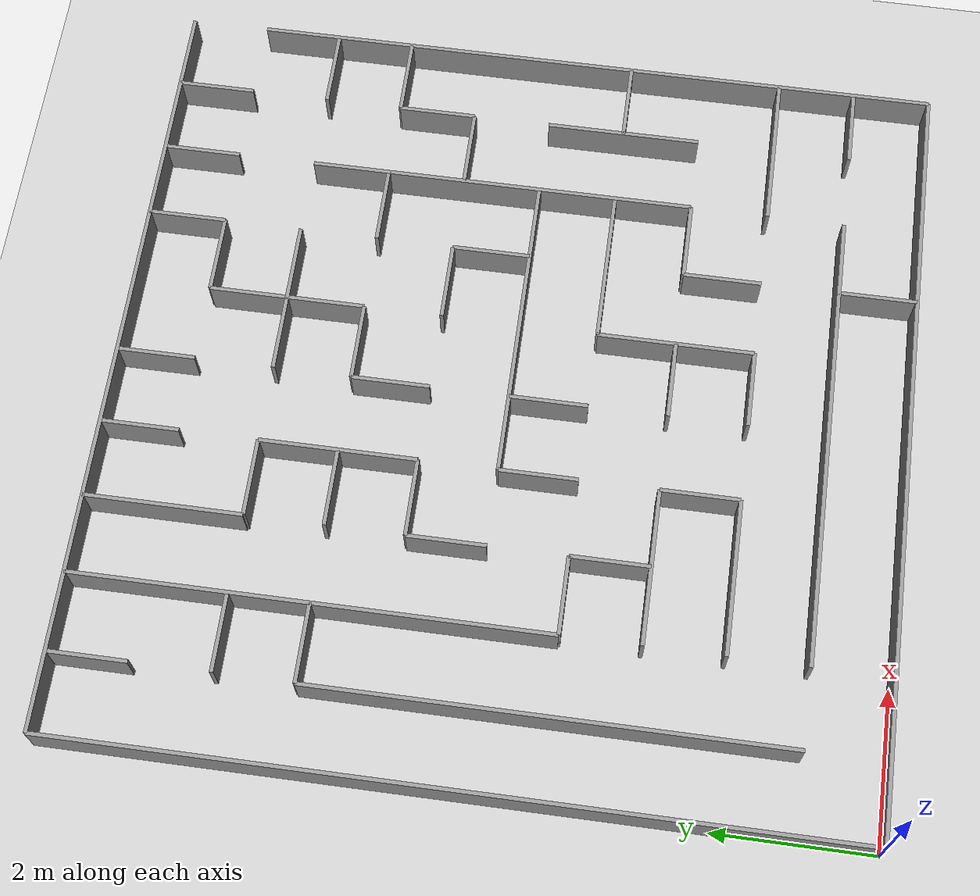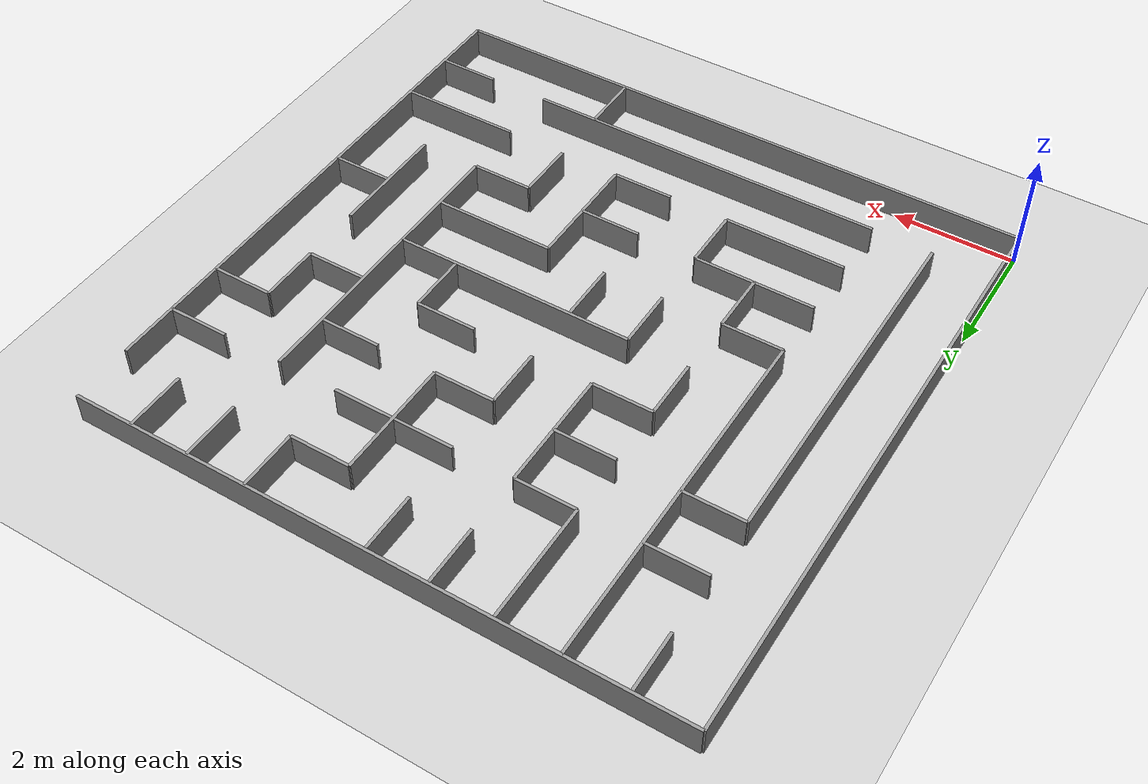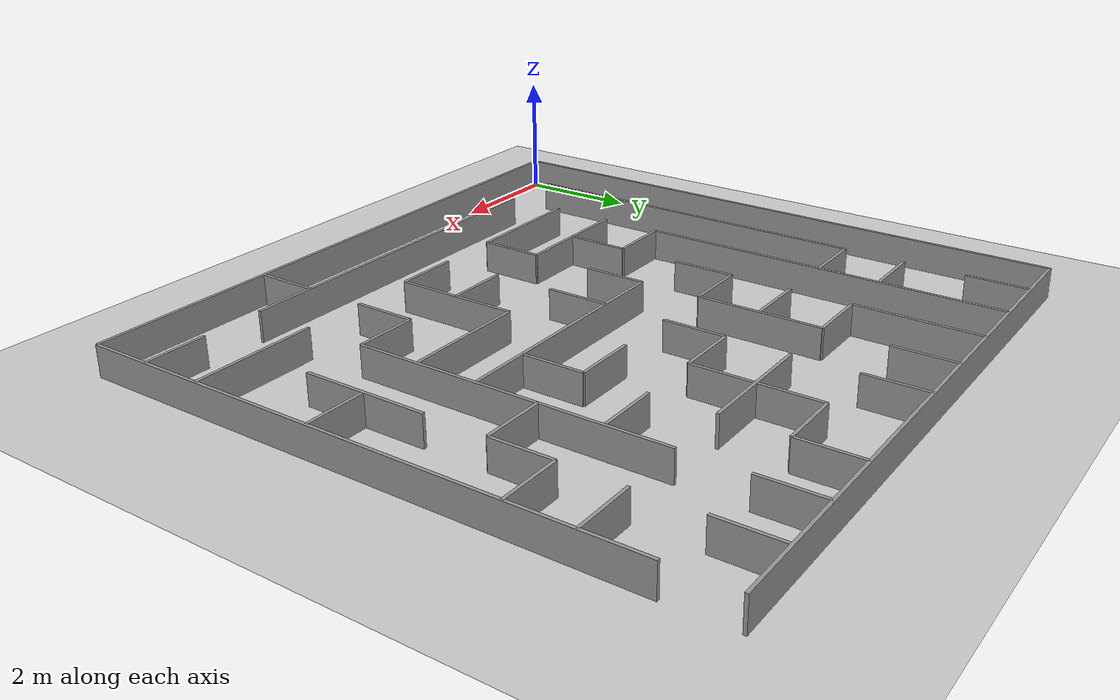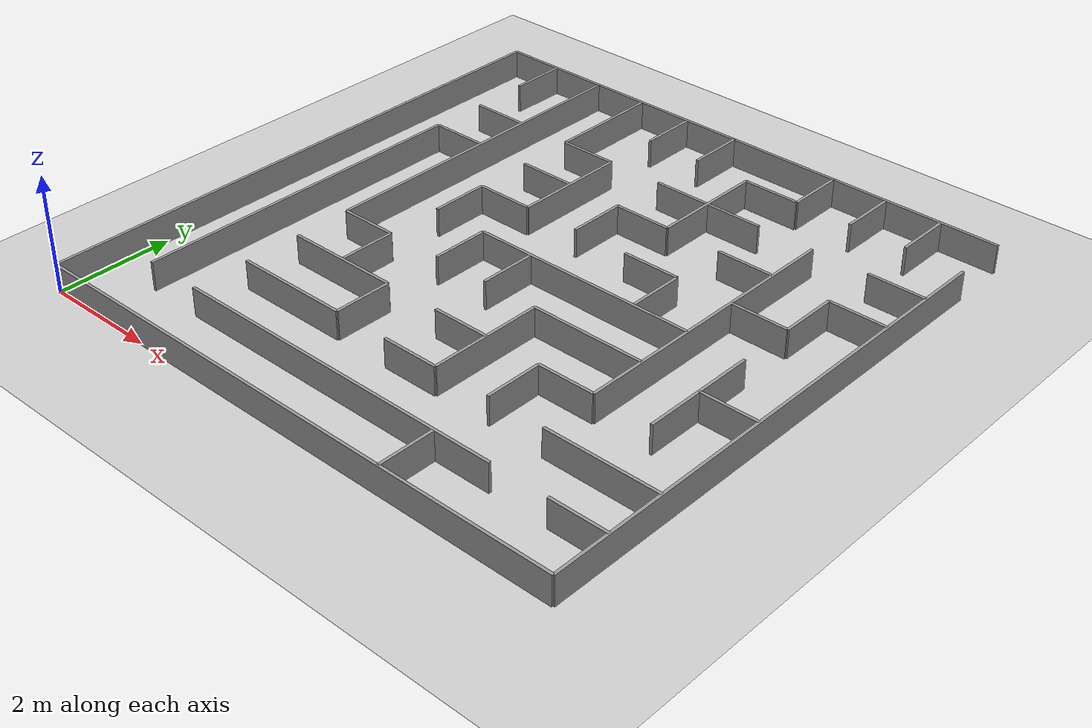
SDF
<?xml version="1.0"?>
<sdf version="1.6">
  <world name="default">

    <include>
      <uri>model://ground_plane</uri>
    </include>

    <include>
      <uri>model://sun</uri>
    </include>

    <scene>
      <shadows>false</shadows>
    </scene>

    <gui fullscreen='0'>
      <camera name='user_camera'>
        <pose frame=''>5.00 5.00 15.00 0 1.5708 0</pose>
        <view_controller>orbit</view_controller>
        <projection_type>perspective</projection_type>
      </camera>
    </gui>

    <physics type="ode">
      <real_time_update_rate>1000.0</real_time_update_rate>
      <max_step_size>0.001</max_step_size>
      <real_time_factor>1</real_time_factor>
      <ode>
        <solver>
          <type>quick</type>
          <iters>150</iters>
          <precon_iters>0</precon_iters>
          <sor>1.400000</sor>
          <use_dynamic_moi_rescaling>1</use_dynamic_moi_rescaling>
        </solver>
        <constraints>
          <cfm>0.00001</cfm>
          <erp>0.2</erp>
          <contact_max_correcting_vel>2000.000000</contact_max_correcting_vel>
          <contact_surface_layer>0.01000</contact_surface_layer>
        </constraints>
      </ode>
    </physics>

    <model name="wall_h_0">
      <static>true</static>
      <pose>5.000 0.000 0.250 0 0 0</pose>
      <link name="link">
        <collision name="collision">
          <geometry>
            <box>
              <size>10.000 0.050 0.500</size>
            </box>
          </geometry>
        </collision>
        <visual name="visual">
          <geometry>
            <box>
              <size>10.000 0.050 0.500</size>
            </box>
          </geometry>
          <material>
            <ambient>0.6 0.6 0.6 1</ambient>
            <diffuse>0.6 0.6 0.6 1</diffuse>
          </material>
        </visual>
      </link>
    </model>
    <model name="wall_h_1">
      <static>true</static>
      <pose>5.000 1.000 0.250 0 0 0</pose>
      <link name="link">
        <collision name="collision">
          <geometry>
            <box>
              <size>6.000 0.050 0.500</size>
            </box>
          </geometry>
        </collision>
        <visual name="visual">
          <geometry>
            <box>
              <size>6.000 0.050 0.500</size>
            </box>
          </geometry>
          <material>
            <ambient>0.6 0.6 0.6 1</ambient>
            <diffuse>0.6 0.6 0.6 1</diffuse>
          </material>
        </visual>
      </link>
    </model>
    <model name="wall_h_2">
      <static>true</static>
      <pose>9.500 1.000 0.250 0 0 0</pose>
      <link name="link">
        <collision name="collision">
          <geometry>
            <box>
              <size>1.000 0.050 0.500</size>
            </box>
          </geometry>
        </collision>
        <visual name="visual">
          <geometry>
            <box>
              <size>1.000 0.050 0.500</size>
            </box>
          </geometry>
          <material>
            <ambient>0.6 0.6 0.6 1</ambient>
            <diffuse>0.6 0.6 0.6 1</diffuse>
          </material>
        </visual>
      </link>
    </model>
    <model name="wall_h_3">
      <static>true</static>
      <pose>3.000 2.000 0.250 0 0 0</pose>
      <link name="link">
        <collision name="collision">
          <geometry>
            <box>
              <size>2.000 0.050 0.500</size>
            </box>
          </geometry>
        </collision>
        <visual name="visual">
          <geometry>
            <box>
              <size>2.000 0.050 0.500</size>
            </box>
          </geometry>
          <material>
            <ambient>0.6 0.6 0.6 1</ambient>
            <diffuse>0.6 0.6 0.6 1</diffuse>
          </material>
        </visual>
      </link>
    </model>
    <model name="wall_h_4">
      <static>true</static>
      <pose>5.500 2.000 0.250 0 0 0</pose>
      <link name="link">
        <collision name="collision">
          <geometry>
            <box>
              <size>1.000 0.050 0.500</size>
            </box>
          </geometry>
        </collision>
        <visual name="visual">
          <geometry>
            <box>
              <size>1.000 0.050 0.500</size>
            </box>
          </geometry>
          <material>
            <ambient>0.6 0.6 0.6 1</ambient>
            <diffuse>0.6 0.6 0.6 1</diffuse>
          </material>
        </visual>
      </link>
    </model>
    <model name="wall_h_5">
      <static>true</static>
      <pose>9.000 2.000 0.250 0 0 0</pose>
      <link name="link">
        <collision name="collision">
          <geometry>
            <box>
              <size>2.000 0.050 0.500</size>
            </box>
          </geometry>
        </collision>
        <visual name="visual">
          <geometry>
            <box>
              <size>2.000 0.050 0.500</size>
            </box>
          </geometry>
          <material>
            <ambient>0.6 0.6 0.6 1</ambient>
            <diffuse>0.6 0.6 0.6 1</diffuse>
          </material>
        </visual>
      </link>
    </model>
    <model name="wall_h_6">
      <static>true</static>
      <pose>3.000 3.000 0.250 0 0 0</pose>
      <link name="link">
        <collision name="collision">
          <geometry>
            <box>
              <size>2.000 0.050 0.500</size>
            </box>
          </geometry>
        </collision>
        <visual name="visual">
          <geometry>
            <box>
              <size>2.000 0.050 0.500</size>
            </box>
          </geometry>
          <material>
            <ambient>0.6 0.6 0.6 1</ambient>
            <diffuse>0.6 0.6 0.6 1</diffuse>
          </material>
        </visual>
      </link>
    </model>
    <model name="wall_h_7">
      <static>true</static>
      <pose>5.500 3.000 0.250 0 0 0</pose>
      <link name="link">
        <collision name="collision">
          <geometry>
            <box>
              <size>1.000 0.050 0.500</size>
            </box>
          </geometry>
        </collision>
        <visual name="visual">
          <geometry>
            <box>
              <size>1.000 0.050 0.500</size>
            </box>
          </geometry>
          <material>
            <ambient>0.6 0.6 0.6 1</ambient>
            <diffuse>0.6 0.6 0.6 1</diffuse>
          </material>
        </visual>
      </link>
    </model>
    <model name="wall_h_8">
      <static>true</static>
      <pose>7.500 3.000 0.250 0 0 0</pose>
      <link name="link">
        <collision name="collision">
          <geometry>
            <box>
              <size>1.000 0.050 0.500</size>
            </box>
          </geometry>
        </collision>
        <visual name="visual">
          <geometry>
            <box>
              <size>1.000 0.050 0.500</size>
            </box>
          </geometry>
          <material>
            <ambient>0.6 0.6 0.6 1</ambient>
            <diffuse>0.6 0.6 0.6 1</diffuse>
          </material>
        </visual>
      </link>
    </model>
    <model name="wall_h_9">
      <static>true</static>
      <pose>2.500 4.000 0.250 0 0 0</pose>
      <link name="link">
        <collision name="collision">
          <geometry>
            <box>
              <size>1.000 0.050 0.500</size>
            </box>
          </geometry>
        </collision>
        <visual name="visual">
          <geometry>
            <box>
              <size>1.000 0.050 0.500</size>
            </box>
          </geometry>
          <material>
            <ambient>0.6 0.6 0.6 1</ambient>
            <diffuse>0.6 0.6 0.6 1</diffuse>
          </material>
        </visual>
      </link>
    </model>
    <model name="wall_h_10">
      <static>true</static>
      <pose>7.000 4.000 0.250 0 0 0</pose>
      <link name="link">
        <collision name="collision">
          <geometry>
            <box>
              <size>2.000 0.050 0.500</size>
            </box>
          </geometry>
        </collision>
        <visual name="visual">
          <geometry>
            <box>
              <size>2.000 0.050 0.500</size>
            </box>
          </geometry>
          <material>
            <ambient>0.6 0.6 0.6 1</ambient>
            <diffuse>0.6 0.6 0.6 1</diffuse>
          </material>
        </visual>
      </link>
    </model>
    <model name="wall_h_11">
      <static>true</static>
      <pose>9.500 4.000 0.250 0 0 0</pose>
      <link name="link">
        <collision name="collision">
          <geometry>
            <box>
              <size>1.000 0.050 0.500</size>
            </box>
          </geometry>
        </collision>
        <visual name="visual">
          <geometry>
            <box>
              <size>1.000 0.050 0.500</size>
            </box>
          </geometry>
          <material>
            <ambient>0.6 0.6 0.6 1</ambient>
            <diffuse>0.6 0.6 0.6 1</diffuse>
          </material>
        </visual>
      </link>
    </model>
    <model name="wall_h_12">
      <static>true</static>
      <pose>6.000 5.000 0.250 0 0 0</pose>
      <link name="link">
        <collision name="collision">
          <geometry>
            <box>
              <size>4.000 0.050 0.500</size>
            </box>
          </geometry>
        </collision>
        <visual name="visual">
          <geometry>
            <box>
              <size>4.000 0.050 0.500</size>
            </box>
          </geometry>
          <material>
            <ambient>0.6 0.6 0.6 1</ambient>
            <diffuse>0.6 0.6 0.6 1</diffuse>
          </material>
        </visual>
      </link>
    </model>
    <model name="wall_h_13">
      <static>true</static>
      <pose>3.500 6.000 0.250 0 0 0</pose>
      <link name="link">
        <collision name="collision">
          <geometry>
            <box>
              <size>1.000 0.050 0.500</size>
            </box>
          </geometry>
        </collision>
        <visual name="visual">
          <geometry>
            <box>
              <size>1.000 0.050 0.500</size>
            </box>
          </geometry>
          <material>
            <ambient>0.6 0.6 0.6 1</ambient>
            <diffuse>0.6 0.6 0.6 1</diffuse>
          </material>
        </visual>
      </link>
    </model>
    <model name="wall_h_14">
      <static>true</static>
      <pose>6.500 6.000 0.250 0 0 0</pose>
      <link name="link">
        <collision name="collision">
          <geometry>
            <box>
              <size>1.000 0.050 0.500</size>
            </box>
          </geometry>
        </collision>
        <visual name="visual">
          <geometry>
            <box>
              <size>1.000 0.050 0.500</size>
            </box>
          </geometry>
          <material>
            <ambient>0.6 0.6 0.6 1</ambient>
            <diffuse>0.6 0.6 0.6 1</diffuse>
          </material>
        </visual>
      </link>
    </model>
    <model name="wall_h_15">
      <static>true</static>
      <pose>8.500 6.000 0.250 0 0 0</pose>
      <link name="link">
        <collision name="collision">
          <geometry>
            <box>
              <size>1.000 0.050 0.500</size>
            </box>
          </geometry>
        </collision>
        <visual name="visual">
          <geometry>
            <box>
              <size>1.000 0.050 0.500</size>
            </box>
          </geometry>
          <material>
            <ambient>0.6 0.6 0.6 1</ambient>
            <diffuse>0.6 0.6 0.6 1</diffuse>
          </material>
        </visual>
      </link>
    </model>
    <model name="wall_h_16">
      <static>true</static>
      <pose>1.500 7.000 0.250 0 0 0</pose>
      <link name="link">
        <collision name="collision">
          <geometry>
            <box>
              <size>1.000 0.050 0.500</size>
            </box>
          </geometry>
        </collision>
        <visual name="visual">
          <geometry>
            <box>
              <size>1.000 0.050 0.500</size>
            </box>
          </geometry>
          <material>
            <ambient>0.6 0.6 0.6 1</ambient>
            <diffuse>0.6 0.6 0.6 1</diffuse>
          </material>
        </visual>
      </link>
    </model>
    <model name="wall_h_17">
      <static>true</static>
      <pose>3.500 7.000 0.250 0 0 0</pose>
      <link name="link">
        <collision name="collision">
          <geometry>
            <box>
              <size>1.000 0.050 0.500</size>
            </box>
          </geometry>
        </collision>
        <visual name="visual">
          <geometry>
            <box>
              <size>1.000 0.050 0.500</size>
            </box>
          </geometry>
          <material>
            <ambient>0.6 0.6 0.6 1</ambient>
            <diffuse>0.6 0.6 0.6 1</diffuse>
          </material>
        </visual>
      </link>
    </model>
    <model name="wall_h_18">
      <static>true</static>
      <pose>5.500 7.000 0.250 0 0 0</pose>
      <link name="link">
        <collision name="collision">
          <geometry>
            <box>
              <size>1.000 0.050 0.500</size>
            </box>
          </geometry>
        </collision>
        <visual name="visual">
          <geometry>
            <box>
              <size>1.000 0.050 0.500</size>
            </box>
          </geometry>
          <material>
            <ambient>0.6 0.6 0.6 1</ambient>
            <diffuse>0.6 0.6 0.6 1</diffuse>
          </material>
        </visual>
      </link>
    </model>
    <model name="wall_h_19">
      <static>true</static>
      <pose>7.500 7.000 0.250 0 0 0</pose>
      <link name="link">
        <collision name="collision">
          <geometry>
            <box>
              <size>1.000 0.050 0.500</size>
            </box>
          </geometry>
        </collision>
        <visual name="visual">
          <geometry>
            <box>
              <size>1.000 0.050 0.500</size>
            </box>
          </geometry>
          <material>
            <ambient>0.6 0.6 0.6 1</ambient>
            <diffuse>0.6 0.6 0.6 1</diffuse>
          </material>
        </visual>
      </link>
    </model>
    <model name="wall_h_20">
      <static>true</static>
      <pose>9.500 7.000 0.250 0 0 0</pose>
      <link name="link">
        <collision name="collision">
          <geometry>
            <box>
              <size>1.000 0.050 0.500</size>
            </box>
          </geometry>
        </collision>
        <visual name="visual">
          <geometry>
            <box>
              <size>1.000 0.050 0.500</size>
            </box>
          </geometry>
          <material>
            <ambient>0.6 0.6 0.6 1</ambient>
            <diffuse>0.6 0.6 0.6 1</diffuse>
          </material>
        </visual>
      </link>
    </model>
    <model name="wall_h_21">
      <static>true</static>
      <pose>1.500 8.000 0.250 0 0 0</pose>
      <link name="link">
        <collision name="collision">
          <geometry>
            <box>
              <size>1.000 0.050 0.500</size>
            </box>
          </geometry>
        </collision>
        <visual name="visual">
          <geometry>
            <box>
              <size>1.000 0.050 0.500</size>
            </box>
          </geometry>
          <material>
            <ambient>0.6 0.6 0.6 1</ambient>
            <diffuse>0.6 0.6 0.6 1</diffuse>
          </material>
        </visual>
      </link>
    </model>
    <model name="wall_h_22">
      <static>true</static>
      <pose>3.500 8.000 0.250 0 0 0</pose>
      <link name="link">
        <collision name="collision">
          <geometry>
            <box>
              <size>1.000 0.050 0.500</size>
            </box>
          </geometry>
        </collision>
        <visual name="visual">
          <geometry>
            <box>
              <size>1.000 0.050 0.500</size>
            </box>
          </geometry>
          <material>
            <ambient>0.6 0.6 0.6 1</ambient>
            <diffuse>0.6 0.6 0.6 1</diffuse>
          </material>
        </visual>
      </link>
    </model>
    <model name="wall_h_23">
      <static>true</static>
      <pose>6.000 8.000 0.250 0 0 0</pose>
      <link name="link">
        <collision name="collision">
          <geometry>
            <box>
              <size>2.000 0.050 0.500</size>
            </box>
          </geometry>
        </collision>
        <visual name="visual">
          <geometry>
            <box>
              <size>2.000 0.050 0.500</size>
            </box>
          </geometry>
          <material>
            <ambient>0.6 0.6 0.6 1</ambient>
            <diffuse>0.6 0.6 0.6 1</diffuse>
          </material>
        </visual>
      </link>
    </model>
    <model name="wall_h_24">
      <static>true</static>
      <pose>9.500 8.000 0.250 0 0 0</pose>
      <link name="link">
        <collision name="collision">
          <geometry>
            <box>
              <size>1.000 0.050 0.500</size>
            </box>
          </geometry>
        </collision>
        <visual name="visual">
          <geometry>
            <box>
              <size>1.000 0.050 0.500</size>
            </box>
          </geometry>
          <material>
            <ambient>0.6 0.6 0.6 1</ambient>
            <diffuse>0.6 0.6 0.6 1</diffuse>
          </material>
        </visual>
      </link>
    </model>
    <model name="wall_h_25">
      <static>true</static>
      <pose>6.500 9.000 0.250 0 0 0</pose>
      <link name="link">
        <collision name="collision">
          <geometry>
            <box>
              <size>1.000 0.050 0.500</size>
            </box>
          </geometry>
        </collision>
        <visual name="visual">
          <geometry>
            <box>
              <size>1.000 0.050 0.500</size>
            </box>
          </geometry>
          <material>
            <ambient>0.6 0.6 0.6 1</ambient>
            <diffuse>0.6 0.6 0.6 1</diffuse>
          </material>
        </visual>
      </link>
    </model>
    <model name="wall_h_26">
      <static>true</static>
      <pose>5.000 10.000 0.250 0 0 0</pose>
      <link name="link">
        <collision name="collision">
          <geometry>
            <box>
              <size>10.000 0.050 0.500</size>
            </box>
          </geometry>
        </collision>
        <visual name="visual">
          <geometry>
            <box>
              <size>10.000 0.050 0.500</size>
            </box>
          </geometry>
          <material>
            <ambient>0.6 0.6 0.6 1</ambient>
            <diffuse>0.6 0.6 0.6 1</diffuse>
          </material>
        </visual>
      </link>
    </model>
    <model name="wall_v_27">
      <static>true</static>
      <pose>0.000 5.000 0.250 0 0 0</pose>
      <link name="link">
        <collision name="collision">
          <geometry>
            <box>
              <size>0.050 10.000 0.500</size>
            </box>
          </geometry>
        </collision>
        <visual name="visual">
          <geometry>
            <box>
              <size>0.050 10.000 0.500</size>
            </box>
          </geometry>
          <material>
            <ambient>0.6 0.6 0.6 1</ambient>
            <diffuse>0.6 0.6 0.6 1</diffuse>
          </material>
        </visual>
      </link>
    </model>
    <model name="wall_v_28">
      <static>true</static>
      <pose>1.000 4.000 0.250 0 0 0</pose>
      <link name="link">
        <collision name="collision">
          <geometry>
            <box>
              <size>0.050 6.000 0.500</size>
            </box>
          </geometry>
        </collision>
        <visual name="visual">
          <geometry>
            <box>
              <size>0.050 6.000 0.500</size>
            </box>
          </geometry>
          <material>
            <ambient>0.6 0.6 0.6 1</ambient>
            <diffuse>0.6 0.6 0.6 1</diffuse>
          </material>
        </visual>
      </link>
    </model>
    <model name="wall_v_29">
      <static>true</static>
      <pose>1.000 9.500 0.250 0 0 0</pose>
      <link name="link">
        <collision name="collision">
          <geometry>
            <box>
              <size>0.050 1.000 0.500</size>
            </box>
          </geometry>
        </collision>
        <visual name="visual">
          <geometry>
            <box>
              <size>0.050 1.000 0.500</size>
            </box>
          </geometry>
          <material>
            <ambient>0.6 0.6 0.6 1</ambient>
            <diffuse>0.6 0.6 0.6 1</diffuse>
          </material>
        </visual>
      </link>
    </model>
    <model name="wall_v_30">
      <static>true</static>
      <pose>2.000 7.000 0.250 0 0 0</pose>
      <link name="link">
        <collision name="collision">
          <geometry>
            <box>
              <size>0.050 6.000 0.500</size>
            </box>
          </geometry>
        </collision>
        <visual name="visual">
          <geometry>
            <box>
              <size>0.050 6.000 0.500</size>
            </box>
          </geometry>
          <material>
            <ambient>0.6 0.6 0.6 1</ambient>
            <diffuse>0.6 0.6 0.6 1</diffuse>
          </material>
        </visual>
      </link>
    </model>
    <model name="wall_v_31">
      <static>true</static>
      <pose>3.000 3.500 0.250 0 0 0</pose>
      <link name="link">
        <collision name="collision">
          <geometry>
            <box>
              <size>0.050 1.000 0.500</size>
            </box>
          </geometry>
        </collision>
        <visual name="visual">
          <geometry>
            <box>
              <size>0.050 1.000 0.500</size>
            </box>
          </geometry>
          <material>
            <ambient>0.6 0.6 0.6 1</ambient>
            <diffuse>0.6 0.6 0.6 1</diffuse>
          </material>
        </visual>
      </link>
    </model>
    <model name="wall_v_32">
      <static>true</static>
      <pose>3.000 5.500 0.250 0 0 0</pose>
      <link name="link">
        <collision name="collision">
          <geometry>
            <box>
              <size>0.050 1.000 0.500</size>
            </box>
          </geometry>
        </collision>
        <visual name="visual">
          <geometry>
            <box>
              <size>0.050 1.000 0.500</size>
            </box>
          </geometry>
          <material>
            <ambient>0.6 0.6 0.6 1</ambient>
            <diffuse>0.6 0.6 0.6 1</diffuse>
          </material>
        </visual>
      </link>
    </model>
    <model name="wall_v_33">
      <static>true</static>
      <pose>3.000 9.000 0.250 0 0 0</pose>
      <link name="link">
        <collision name="collision">
          <geometry>
            <box>
              <size>0.050 2.000 0.500</size>
            </box>
          </geometry>
        </collision>
        <visual name="visual">
          <geometry>
            <box>
              <size>0.050 2.000 0.500</size>
            </box>
          </geometry>
          <material>
            <ambient>0.6 0.6 0.6 1</ambient>
            <diffuse>0.6 0.6 0.6 1</diffuse>
          </material>
        </visual>
      </link>
    </model>
    <model name="wall_v_34">
      <static>true</static>
      <pose>4.000 2.500 0.250 0 0 0</pose>
      <link name="link">
        <collision name="collision">
          <geometry>
            <box>
              <size>0.050 1.000 0.500</size>
            </box>
          </geometry>
        </collision>
        <visual name="visual">
          <geometry>
            <box>
              <size>0.050 1.000 0.500</size>
            </box>
          </geometry>
          <material>
            <ambient>0.6 0.6 0.6 1</ambient>
            <diffuse>0.6 0.6 0.6 1</diffuse>
          </material>
        </visual>
      </link>
    </model>
    <model name="wall_v_35">
      <static>true</static>
      <pose>4.000 4.500 0.250 0 0 0</pose>
      <link name="link">
        <collision name="collision">
          <geometry>
            <box>
              <size>0.050 1.000 0.500</size>
            </box>
          </geometry>
        </collision>
        <visual name="visual">
          <geometry>
            <box>
              <size>0.050 1.000 0.500</size>
            </box>
          </geometry>
          <material>
            <ambient>0.6 0.6 0.6 1</ambient>
            <diffuse>0.6 0.6 0.6 1</diffuse>
          </material>
        </visual>
      </link>
    </model>
    <model name="wall_v_36">
      <static>true</static>
      <pose>4.000 7.000 0.250 0 0 0</pose>
      <link name="link">
        <collision name="collision">
          <geometry>
            <box>
              <size>0.050 2.000 0.500</size>
            </box>
          </geometry>
        </collision>
        <visual name="visual">
          <geometry>
            <box>
              <size>0.050 2.000 0.500</size>
            </box>
          </geometry>
          <material>
            <ambient>0.6 0.6 0.6 1</ambient>
            <diffuse>0.6 0.6 0.6 1</diffuse>
          </material>
        </visual>
      </link>
    </model>
    <model name="wall_v_37">
      <static>true</static>
      <pose>4.000 9.500 0.250 0 0 0</pose>
      <link name="link">
        <collision name="collision">
          <geometry>
            <box>
              <size>0.050 1.000 0.500</size>
            </box>
          </geometry>
        </collision>
        <visual name="visual">
          <geometry>
            <box>
              <size>0.050 1.000 0.500</size>
            </box>
          </geometry>
          <material>
            <ambient>0.6 0.6 0.6 1</ambient>
            <diffuse>0.6 0.6 0.6 1</diffuse>
          </material>
        </visual>
      </link>
    </model>
    <model name="wall_v_38">
      <static>true</static>
      <pose>5.000 4.500 0.250 0 0 0</pose>
      <link name="link">
        <collision name="collision">
          <geometry>
            <box>
              <size>0.050 1.000 0.500</size>
            </box>
          </geometry>
        </collision>
        <visual name="visual">
          <geometry>
            <box>
              <size>0.050 1.000 0.500</size>
            </box>
          </geometry>
          <material>
            <ambient>0.6 0.6 0.6 1</ambient>
            <diffuse>0.6 0.6 0.6 1</diffuse>
          </material>
        </visual>
      </link>
    </model>
    <model name="wall_v_39">
      <static>true</static>
      <pose>5.000 6.500 0.250 0 0 0</pose>
      <link name="link">
        <collision name="collision">
          <geometry>
            <box>
              <size>0.050 1.000 0.500</size>
            </box>
          </geometry>
        </collision>
        <visual name="visual">
          <geometry>
            <box>
              <size>0.050 1.000 0.500</size>
            </box>
          </geometry>
          <material>
            <ambient>0.6 0.6 0.6 1</ambient>
            <diffuse>0.6 0.6 0.6 1</diffuse>
          </material>
        </visual>
      </link>
    </model>
    <model name="wall_v_40">
      <static>true</static>
      <pose>5.000 9.500 0.250 0 0 0</pose>
      <link name="link">
        <collision name="collision">
          <geometry>
            <box>
              <size>0.050 1.000 0.500</size>
            </box>
          </geometry>
        </collision>
        <visual name="visual">
          <geometry>
            <box>
              <size>0.050 1.000 0.500</size>
            </box>
          </geometry>
          <material>
            <ambient>0.6 0.6 0.6 1</ambient>
            <diffuse>0.6 0.6 0.6 1</diffuse>
          </material>
        </visual>
      </link>
    </model>
    <model name="wall_v_41">
      <static>true</static>
      <pose>6.000 3.000 0.250 0 0 0</pose>
      <link name="link">
        <collision name="collision">
          <geometry>
            <box>
              <size>0.050 2.000 0.500</size>
            </box>
          </geometry>
        </collision>
        <visual name="visual">
          <geometry>
            <box>
              <size>0.050 2.000 0.500</size>
            </box>
          </geometry>
          <material>
            <ambient>0.6 0.6 0.6 1</ambient>
            <diffuse>0.6 0.6 0.6 1</diffuse>
          </material>
        </visual>
      </link>
    </model>
    <model name="wall_v_42">
      <static>true</static>
      <pose>6.000 8.000 0.250 0 0 0</pose>
      <link name="link">
        <collision name="collision">
          <geometry>
            <box>
              <size>0.050 2.000 0.500</size>
            </box>
          </geometry>
        </collision>
        <visual name="visual">
          <geometry>
            <box>
              <size>0.050 2.000 0.500</size>
            </box>
          </geometry>
          <material>
            <ambient>0.6 0.6 0.6 1</ambient>
            <diffuse>0.6 0.6 0.6 1</diffuse>
          </material>
        </visual>
      </link>
    </model>
    <model name="wall_v_43">
      <static>true</static>
      <pose>7.000 0.500 0.250 0 0 0</pose>
      <link name="link">
        <collision name="collision">
          <geometry>
            <box>
              <size>0.050 1.000 0.500</size>
            </box>
          </geometry>
        </collision>
        <visual name="visual">
          <geometry>
            <box>
              <size>0.050 1.000 0.500</size>
            </box>
          </geometry>
          <material>
            <ambient>0.6 0.6 0.6 1</ambient>
            <diffuse>0.6 0.6 0.6 1</diffuse>
          </material>
        </visual>
      </link>
    </model>
    <model name="wall_v_44">
      <static>true</static>
      <pose>7.000 2.500 0.250 0 0 0</pose>
      <link name="link">
        <collision name="collision">
          <geometry>
            <box>
              <size>0.050 1.000 0.500</size>
            </box>
          </geometry>
        </collision>
        <visual name="visual">
          <geometry>
            <box>
              <size>0.050 1.000 0.500</size>
            </box>
          </geometry>
          <material>
            <ambient>0.6 0.6 0.6 1</ambient>
            <diffuse>0.6 0.6 0.6 1</diffuse>
          </material>
        </visual>
      </link>
    </model>
    <model name="wall_v_45">
      <static>true</static>
      <pose>7.000 5.500 0.250 0 0 0</pose>
      <link name="link">
        <collision name="collision">
          <geometry>
            <box>
              <size>0.050 1.000 0.500</size>
            </box>
          </geometry>
        </collision>
        <visual name="visual">
          <geometry>
            <box>
              <size>0.050 1.000 0.500</size>
            </box>
          </geometry>
          <material>
            <ambient>0.6 0.6 0.6 1</ambient>
            <diffuse>0.6 0.6 0.6 1</diffuse>
          </material>
        </visual>
      </link>
    </model>
    <model name="wall_v_46">
      <static>true</static>
      <pose>7.000 9.500 0.250 0 0 0</pose>
      <link name="link">
        <collision name="collision">
          <geometry>
            <box>
              <size>0.050 1.000 0.500</size>
            </box>
          </geometry>
        </collision>
        <visual name="visual">
          <geometry>
            <box>
              <size>0.050 1.000 0.500</size>
            </box>
          </geometry>
          <material>
            <ambient>0.6 0.6 0.6 1</ambient>
            <diffuse>0.6 0.6 0.6 1</diffuse>
          </material>
        </visual>
      </link>
    </model>
    <model name="wall_v_47">
      <static>true</static>
      <pose>8.000 5.500 0.250 0 0 0</pose>
      <link name="link">
        <collision name="collision">
          <geometry>
            <box>
              <size>0.050 5.000 0.500</size>
            </box>
          </geometry>
        </collision>
        <visual name="visual">
          <geometry>
            <box>
              <size>0.050 5.000 0.500</size>
            </box>
          </geometry>
          <material>
            <ambient>0.6 0.6 0.6 1</ambient>
            <diffuse>0.6 0.6 0.6 1</diffuse>
          </material>
        </visual>
      </link>
    </model>
    <model name="wall_v_48">
      <static>true</static>
      <pose>8.000 9.500 0.250 0 0 0</pose>
      <link name="link">
        <collision name="collision">
          <geometry>
            <box>
              <size>0.050 1.000 0.500</size>
            </box>
          </geometry>
        </collision>
        <visual name="visual">
          <geometry>
            <box>
              <size>0.050 1.000 0.500</size>
            </box>
          </geometry>
          <material>
            <ambient>0.6 0.6 0.6 1</ambient>
            <diffuse>0.6 0.6 0.6 1</diffuse>
          </material>
        </visual>
      </link>
    </model>
    <model name="wall_v_49">
      <static>true</static>
      <pose>9.000 4.000 0.250 0 0 0</pose>
      <link name="link">
        <collision name="collision">
          <geometry>
            <box>
              <size>0.050 2.000 0.500</size>
            </box>
          </geometry>
        </collision>
        <visual name="visual">
          <geometry>
            <box>
              <size>0.050 2.000 0.500</size>
            </box>
          </geometry>
          <material>
            <ambient>0.6 0.6 0.6 1</ambient>
            <diffuse>0.6 0.6 0.6 1</diffuse>
          </material>
        </visual>
      </link>
    </model>
    <model name="wall_v_50">
      <static>true</static>
      <pose>9.000 6.500 0.250 0 0 0</pose>
      <link name="link">
        <collision name="collision">
          <geometry>
            <box>
              <size>0.050 1.000 0.500</size>
            </box>
          </geometry>
        </collision>
        <visual name="visual">
          <geometry>
            <box>
              <size>0.050 1.000 0.500</size>
            </box>
          </geometry>
          <material>
            <ambient>0.6 0.6 0.6 1</ambient>
            <diffuse>0.6 0.6 0.6 1</diffuse>
          </material>
        </visual>
      </link>
    </model>
    <model name="wall_v_51">
      <static>true</static>
      <pose>9.000 9.500 0.250 0 0 0</pose>
      <link name="link">
        <collision name="collision">
          <geometry>
            <box>
              <size>0.050 1.000 0.500</size>
            </box>
          </geometry>
        </collision>
        <visual name="visual">
          <geometry>
            <box>
              <size>0.050 1.000 0.500</size>
            </box>
          </geometry>
          <material>
            <ambient>0.6 0.6 0.6 1</ambient>
            <diffuse>0.6 0.6 0.6 1</diffuse>
          </material>
        </visual>
      </link>
    </model>
    <model name="wall_v_52">
      <static>true</static>
      <pose>10.000 4.500 0.250 0 0 0</pose>
      <link name="link">
        <collision name="collision">
          <geometry>
            <box>
              <size>0.050 9.000 0.500</size>
            </box>
          </geometry>
        </collision>
        <visual name="visual">
          <geometry>
            <box>
              <size>0.050 9.000 0.500</size>
            </box>
          </geometry>
          <material>
            <ambient>0.6 0.6 0.6 1</ambient>
            <diffuse>0.6 0.6 0.6 1</diffuse>
          </material>
        </visual>
      </link>
    </model>

  </world>
</sdf>
